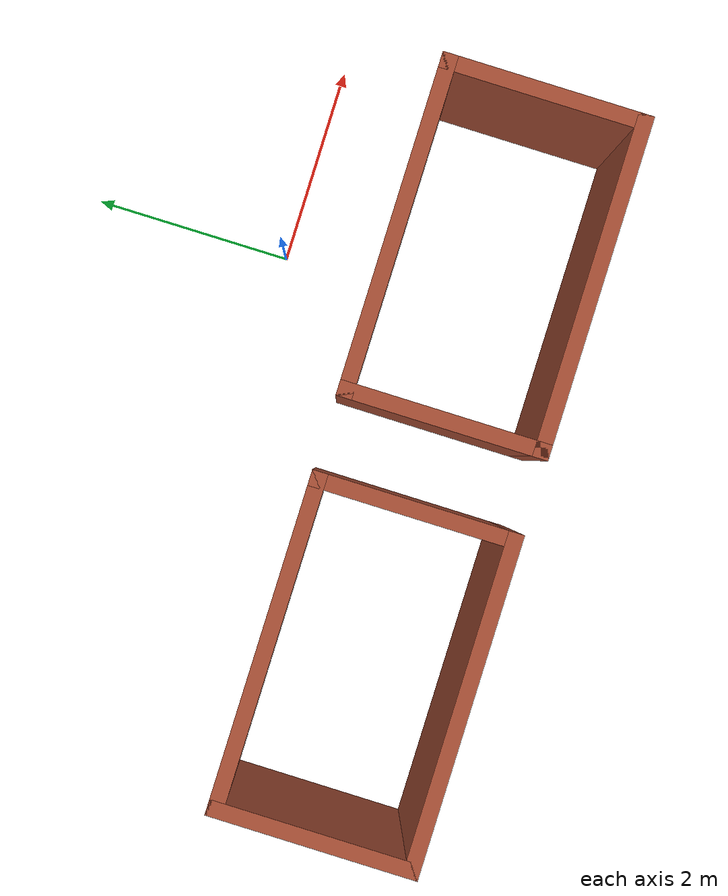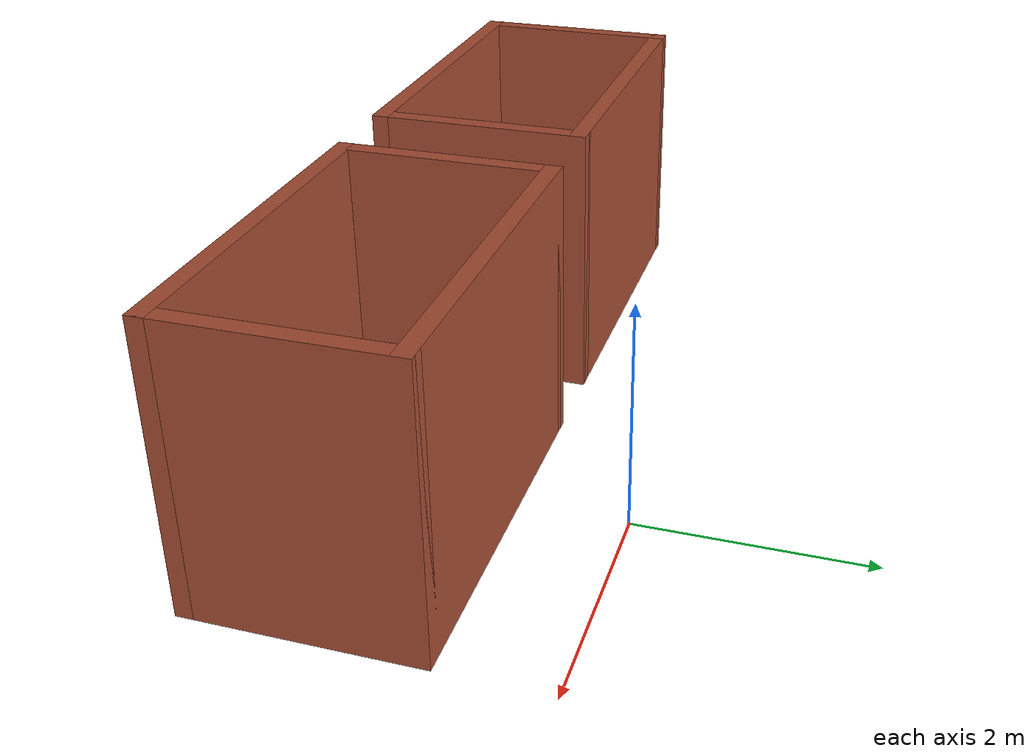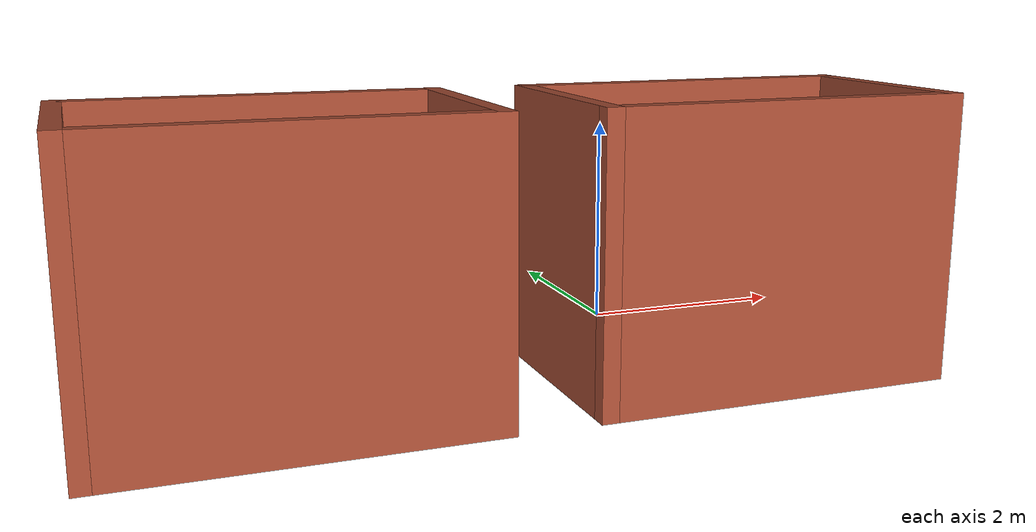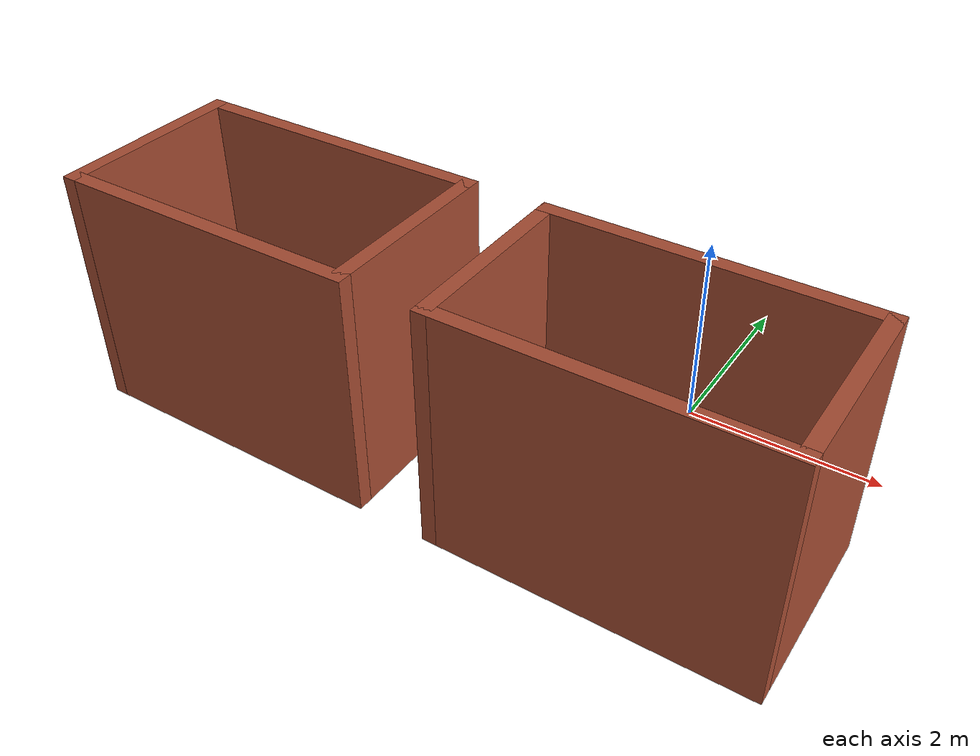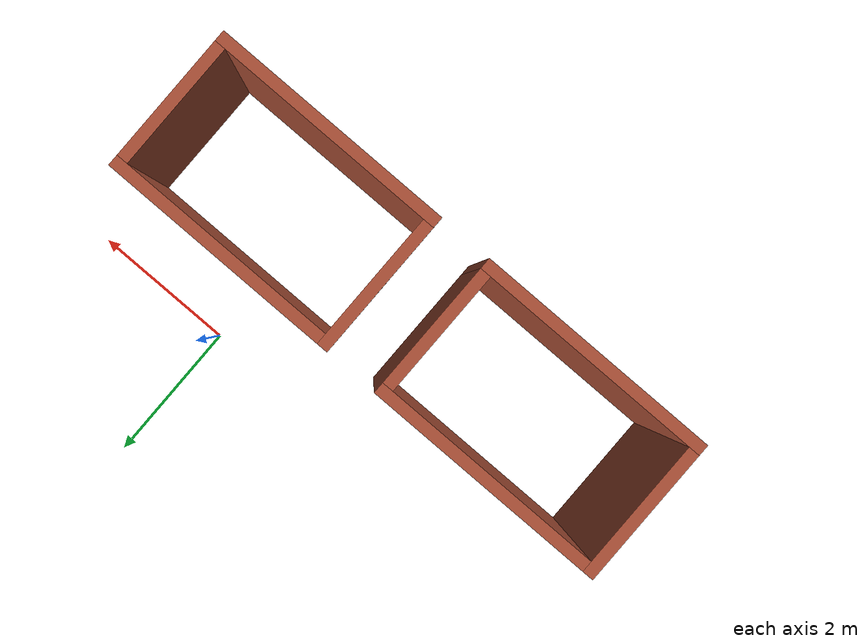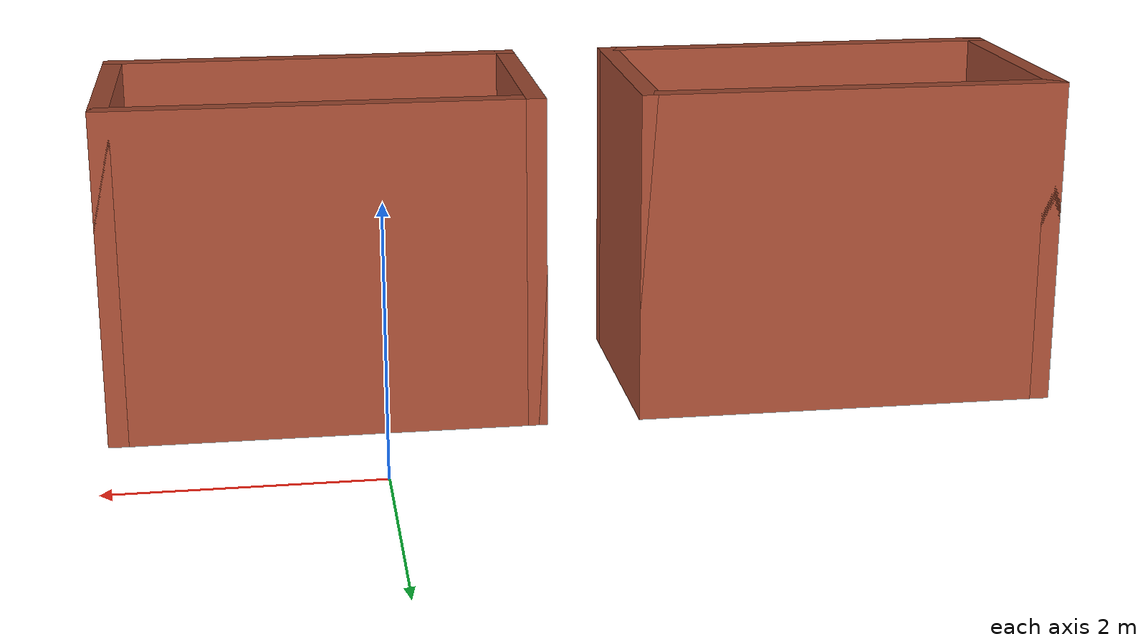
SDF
<?xml version='1.0'?>
<sdf version='1.7'>
  <model name='corridor'>
    <pose>-1.605 -1.4625 0 0 -0 0</pose>
    <link name='Wall_0'>
      <collision name='Wall_0_Collision'>
        <geometry>
          <box>
            <size>3.25 0.15 2.5</size>
          </box>
        </geometry>
        <pose>0 0 1.25 0 -0 0</pose>
      </collision>
      <visual name='Wall_0_Visual'>
        <pose>0 0 1.25 0 -0 0</pose>
        <geometry>
          <box>
            <size>3.25 0.15 2.5</size>
          </box>
        </geometry>
        <material>
          <script>
            <uri>file://media/materials/scripts/gazebo.material</uri>
            <name>Gazebo/Bricks</name>
          </script>
          <ambient>1 1 1 1</ambient>
        </material>
        <meta>
          <layer>0</layer>
        </meta>
      </visual>
      <pose>-1.975 -1.3875 0 0 -0 3.14159</pose>
    </link>
    <link name='Wall_1'>
      <collision name='Wall_1_Collision'>
        <geometry>
          <box>
            <size>2 0.15 2.5</size>
          </box>
        </geometry>
        <pose>0 0 1.25 0 -0 0</pose>
      </collision>
      <visual name='Wall_1_Visual'>
        <pose>0 0 1.25 0 -0 0</pose>
        <geometry>
          <box>
            <size>2 0.15 2.5</size>
          </box>
        </geometry>
        <material>
          <script>
            <uri>file://media/materials/scripts/gazebo.material</uri>
            <name>Gazebo/Bricks</name>
          </script>
          <ambient>1 1 1 1</ambient>
        </material>
        <meta>
          <layer>0</layer>
        </meta>
      </visual>
      <pose>-3.525 -0.4625 0 0 -0 1.5708</pose>
    </link>
    <link name='Wall_10'>
      <collision name='Wall_10_Collision'>
        <geometry>
          <box>
            <size>3.25 0.15 2.5</size>
          </box>
        </geometry>
        <pose>0 0 1.25 0 -0 0</pose>
      </collision>
      <visual name='Wall_10_Visual'>
        <pose>0 0 1.25 0 -0 0</pose>
        <geometry>
          <box>
            <size>3.25 0.15 2.5</size>
          </box>
        </geometry>
        <material>
          <script>
            <uri>file://media/materials/scripts/gazebo.material</uri>
            <name>Gazebo/Bricks</name>
          </script>
          <ambient>1 1 1 1</ambient>
        </material>
        <meta>
          <layer>0</layer>
        </meta>
      </visual>
      <pose>1.975 -1.3875 0 0 -0 3.14159</pose>
    </link>
    <link name='Wall_2'>
      <collision name='Wall_2_Collision'>
        <geometry>
          <box>
            <size>3.25 0.15 2.5</size>
          </box>
        </geometry>
        <pose>0 0 1.25 0 -0 0</pose>
      </collision>
      <visual name='Wall_2_Visual'>
        <pose>0 0 1.25 0 -0 0</pose>
        <geometry>
          <box>
            <size>3.25 0.15 2.5</size>
          </box>
        </geometry>
        <material>
          <script>
            <uri>file://media/materials/scripts/gazebo.material</uri>
            <name>Gazebo/Bricks</name>
          </script>
          <ambient>1 1 1 1</ambient>
        </material>
        <meta>
          <layer>0</layer>
        </meta>
      </visual>
      <pose>-1.975 0.4625 0 0 -0 0</pose>
    </link>
    <link name='Wall_3'>
      <collision name='Wall_3_Collision'>
        <geometry>
          <box>
            <size>2 0.15 2.5</size>
          </box>
        </geometry>
        <pose>0 0 1.25 0 -0 0</pose>
      </collision>
      <visual name='Wall_3_Visual'>
        <pose>0 0 1.25 0 -0 0</pose>
        <geometry>
          <box>
            <size>2 0.15 2.5</size>
          </box>
        </geometry>
        <material>
          <script>
            <uri>file://media/materials/scripts/gazebo.material</uri>
            <name>Gazebo/Bricks</name>
          </script>
          <ambient>1 1 1 1</ambient>
        </material>
        <meta>
          <layer>0</layer>
        </meta>
      </visual>
      <pose>-0.425 -0.4625 0 0 -0 -1.5708</pose>
    </link>
    <link name='Wall_7'>
      <collision name='Wall_7_Collision'>
        <geometry>
          <box>
            <size>2 0.15 2.5</size>
          </box>
        </geometry>
        <pose>0 0 1.25 0 -0 0</pose>
      </collision>
      <visual name='Wall_7_Visual'>
        <pose>0 0 1.25 0 -0 0</pose>
        <geometry>
          <box>
            <size>2 0.15 2.5</size>
          </box>
        </geometry>
        <material>
          <script>
            <uri>file://media/materials/scripts/gazebo.material</uri>
            <name>Gazebo/Bricks</name>
          </script>
          <ambient>1 1 1 1</ambient>
        </material>
        <meta>
          <layer>0</layer>
        </meta>
      </visual>
      <pose>0.425 -0.4625 0 0 -0 1.5708</pose>
    </link>
    <link name='Wall_8'>
      <collision name='Wall_8_Collision'>
        <geometry>
          <box>
            <size>3.25 0.15 2.5</size>
          </box>
        </geometry>
        <pose>0 0 1.25 0 -0 0</pose>
      </collision>
      <visual name='Wall_8_Visual'>
        <pose>0 0 1.25 0 -0 0</pose>
        <geometry>
          <box>
            <size>3.25 0.15 2.5</size>
          </box>
        </geometry>
        <material>
          <script>
            <uri>file://media/materials/scripts/gazebo.material</uri>
            <name>Gazebo/Bricks</name>
          </script>
          <ambient>1 1 1 1</ambient>
        </material>
        <meta>
          <layer>0</layer>
        </meta>
      </visual>
      <pose>1.975 0.4625 0 0 -0 0</pose>
    </link>
    <link name='Wall_9'>
      <collision name='Wall_9_Collision'>
        <geometry>
          <box>
            <size>2 0.15 2.5</size>
          </box>
        </geometry>
        <pose>0 0 1.25 0 -0 0</pose>
      </collision>
      <visual name='Wall_9_Visual'>
        <pose>0 0 1.25 0 -0 0</pose>
        <geometry>
          <box>
            <size>2 0.15 2.5</size>
          </box>
        </geometry>
        <material>
          <script>
            <uri>file://media/materials/scripts/gazebo.material</uri>
            <name>Gazebo/Bricks</name>
          </script>
          <ambient>1 1 1 1</ambient>
        </material>
        <meta>
          <layer>0</layer>
        </meta>
      </visual>
      <pose>3.525 -0.4625 0 0 -0 -1.5708</pose>
    </link>
    <static>1</static>
  </model>
</sdf>
